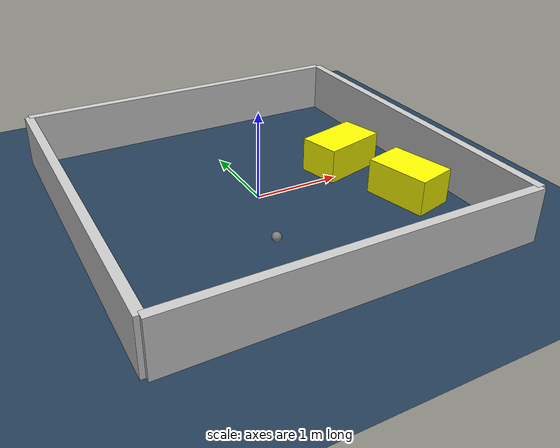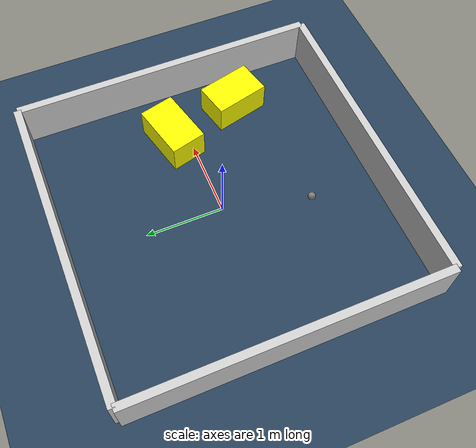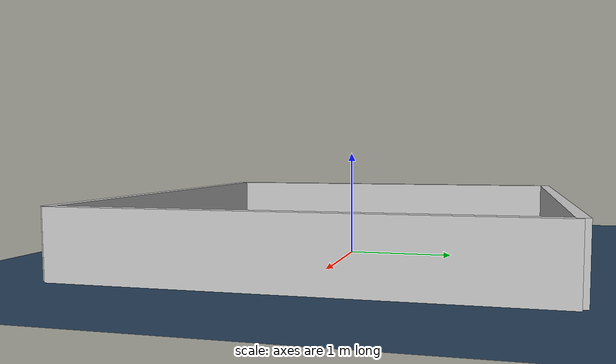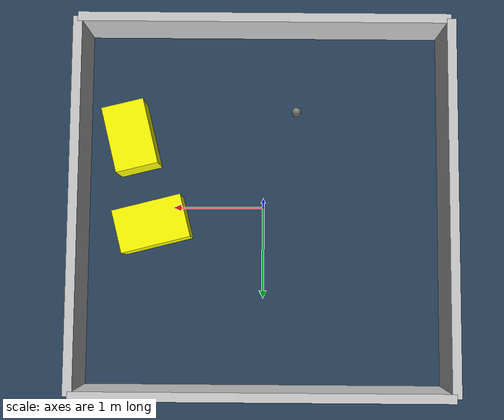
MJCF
<?xml version="1.0" ?>
<mujoco model="generated_environment">
  <option timestep="0.01" integrator="RK4" cone="elliptic"/>
  <default>
    <geom density="1"/>
  </default>
  <asset>
    <texture builtin="gradient" height="3072" rgb1="0.3 0.5 0.7" rgb2="0 0 0" type="skybox" width="512"/>
    <texture builtin="checker" height="300" mark="edge" markrgb="0.8 0.8 0.8" name="groundplane" rgb1="0.2 0.3 0.4" rgb2="0.1 0.2 0.3" type="2d" width="300"/>
    <material name="groundplane" reflectance="0.2" texrepeat="5 5" texture="groundplane" texuniform="true"/>
    <material name="robot" rgba="0.0 1.0 0.0 1"/>
  </asset>
  <worldbody>
    <light dir="0 0 -1" directional="true" pos="0 0 1.5"/>
    <geom condim="4" friction="1.0 0.005 0.001" material="groundplane" name="floor" size="0 0 0.05" type="plane"/>
    <body name="walls">
      <geom name="wall_1" condim="4" pos="-2.0 0.0 0.3" rgba="0.800000011920929 0.800000011920929 0.800000011920929 1.0" size="0.05 2.0 0.3" type="box"/>
      <geom name="wall_2" condim="4" pos="2.0 0.0 0.3" rgba="0.800000011920929 0.800000011920929 0.800000011920929 1.0" size="0.05 2.0 0.3" type="box"/>
      <geom name="wall_3" condim="4" pos="0.0 -2.0 0.3" rgba="0.800000011920929 0.800000011920929 0.800000011920929 1.0" size="2.0 0.05 0.3" type="box"/>
      <geom name="wall_4" condim="4" pos="0.0 2.0 0.3" rgba="0.800000011920929 0.800000011920929 0.800000011920929 1.0" size="2.0 0.05 0.3" type="box"/>
    </body>
    <body name="robot">
      <joint name="joint_x" type="slide" pos="0 0 0" axis="1 0 0"/>
      <joint name="joint_y" type="slide" pos="0 0 0" axis="0 1 0"/>
      <geom name="robot" type="sphere" pos="-0.3598976120594921 -1.055395081221492 0.2" size="0.05" mass="5." friction="1.0 0.005 0.0001" condim="4"/>
      <site name="sensor_ball"/>
    </body>
    <body name="obstacle_1_movable">
      <geom name="obstacle_1_movable" condim="4" pos="1.2062706964361096 0.20544830235838507 0.2" euler="0 0 104.28044474655997" friction="1.0 0.005 0.001" rgba="1 1 0 1" size="0.23554648707547543 0.3783766077150214 0.2" type="box" mass="0.1"/>
      <joint type="free"/>
    </body>
    <body name="obstacle_2_movable">
      <geom name="obstacle_2_movable" condim="4" pos="1.4553285122727286 -0.7496081754585455 0.2" euler="0 0 13.957616691299934" friction="1.0 0.005 0.001" rgba="1 1 0 1" size="0.23192325174889486 0.36216536570893165 0.2" type="box" mass="0.1"/>
      <joint type="free"/>
    </body>
  </worldbody>
  <actuator>
    <motor name="actuator_x" joint="joint_x" gear="1" ctrlrange="-1 1"/>
    <motor name="actuator_y" joint="joint_y" gear="1" ctrlrange="-1 1"/>
  </actuator>
</mujoco>
